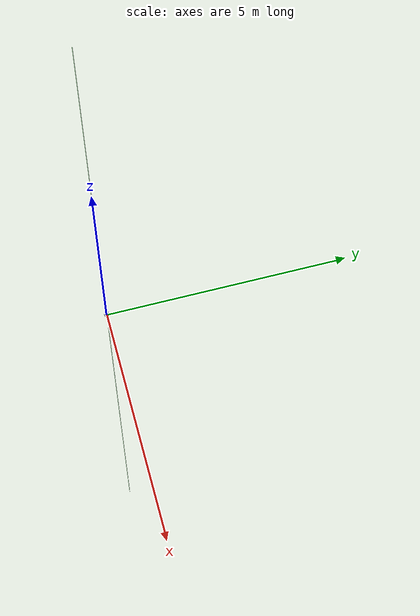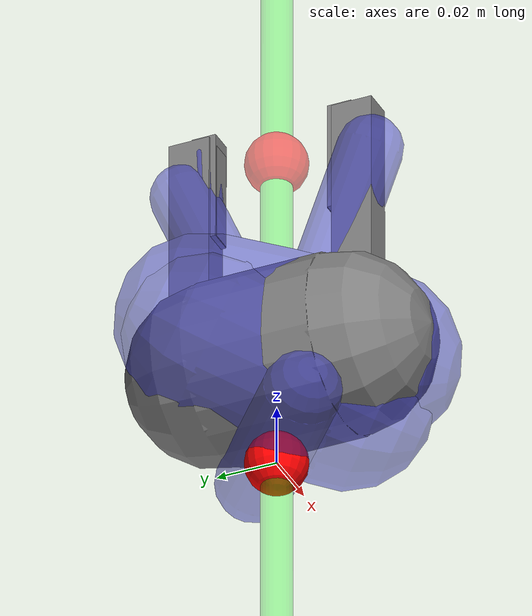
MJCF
<mujoco model="base">
  <asset>
    <mesh name="standard_narrow" file="meshes/rethink_gripper/standard_narrow.stl"/>
    <mesh name="half_round_tip" file="meshes/rethink_gripper/half_round_tip.stl"/>
    <material name="Material_001.001" specular="0.5" shininess="0.25" rgba="0.640000 0.000000 0.000000 1.000000"/>
    <material name="Material_002" specular="0.5" shininess="0.25" rgba="0.640000 0.640000 0.640000 1.000000"/>
    <mesh name="electric_gripper_base_0" file="obj_meshes/rethink_gripper/electric_gripper_base/electric_gripper_base_0.obj"/>
    <mesh name="electric_gripper_base_1" file="obj_meshes/rethink_gripper/electric_gripper_base/electric_gripper_base_1.obj"/>
    <material name="finger_mat" specular="0.5" shininess="0.25" rgba="0.000000 0.000000 0.000000 1.000000"/>
    <material name="Material_001" specular="0.5" shininess="0.25" rgba="0.001651 0.001651 0.001651 1.000000"/>
    <mesh name="connector_plate" file="obj_meshes/rethink_gripper/connector_plate/connector_plate.obj"/>
  </asset>
  <actuator>
    <position ctrllimited="true" ctrlrange="-0.0115 0.020833" joint="r_finger_joint" kp="1000" name="gripper_r_finger_joint" forcelimited="true" forcerange="-20 20"/>
    <position ctrllimited="true" ctrlrange="-0.020833 0.0115" joint="l_finger_joint" kp="1000" name="gripper_l_finger_joint" forcelimited="true" forcerange="-20 20"/>
  </actuator>
  <default>
    <default class="visual">
      <geom contype="0" conaffinity="0" group="1" type="mesh"/>
    </default>
  </default>
  <worldbody>
    <body name="gripper_base" pos="0 0 0">
      <site name="ft_frame" pos="0 0 0" size="0.01 0.01 0.01" rgba="1 0 0 1" type="sphere" group="1"/>
      <inertial pos="0 0 0" quat="-0.5 0.5 0.5 0.5" mass="0.3" diaginertia="3e-08 2e-08 2e-08"/>
      <geom material="Material_001" pos="0.000375 -0.000399 0.009705" quat="0.492537 0.048429 0.715869 0.492537" class="visual" type="capsule" size="0.012370 0.025608" rgba="0.2 0.2 0.8 0.5"/>
      <geom material="Material_002" pos="0.003949 0.001298 0.036681" quat="0.583362 -0.561638 0.062768 0.583362" class="visual" type="capsule" size="0.027455 0.022754" rgba="0.2 0.2 0.8 0.5"/>
      <geom material="Material_001.001" pos="0.006136 -0.000938 0.048234" quat="0.557867 -0.576691 0.212122 0.557867" class="visual" type="capsule" size="0.027861 0.026319" rgba="0.2 0.2 0.8 0.5"/>
      <geom size="0.029 0.021" quat="0 0 0.707107 0.707107" type="capsule" group="0" name="gripper_base_col" pos="0.004 0.0 0.04"/>
      <body name="eef" pos="0 0 0.109" quat="0.707105 0 0 -0.707105">
        <site name="grip_site" pos="0 0 0" size="0.01 0.01 0.01" rgba="1 0 0 0.5" type="sphere" group="1"/>
        <site name="ee_x" pos="0.1 0 0" size="0.005 .1" quat="0.707105  0 0.707108 0 " rgba="1 0 0 0" type="cylinder" group="1"/>
        <site name="ee_y" pos="0 0.1 0" size="0.005 .1" quat="0.707105 0.707108 0 0" rgba="0 1 0 0" type="cylinder" group="1"/>
        <site name="ee_z" pos="0 0 0.1" size="0.005 .1" quat="1 0 0 0" rgba="0 0 1 0" type="cylinder" group="1"/>
        <site name="grip_site_cylinder" pos="0 0 0" size="0.005 10" rgba="0 1 0 0.3" type="cylinder" group="1"/>
      </body>
      <body name="l_finger" pos="0 0.01 0.0444">
        <inertial pos="0 0 0" quat="0 0 0 -1" mass="0.02" diaginertia="0.01 0.01 0.01"/>
        <joint name="l_finger_joint" pos="0 0 0" axis="0 1 0" type="slide" limited="true" range="-0.0115 0.020833" damping="100" armature="1.0" frictionloss="1.0"/>
        <geom name="l_finger" quat="0.000000 0.200590 0.957616 -0.206724" type="capsule" contype="0" conaffinity="0" group="1" material="finger_mat" pos="-0.002129 0.008645 0.031337" size="0.010339 0.033020" rgba="0.2 0.2 0.8 0.5"/>
        <geom size="0.005 0.00675 0.0375" pos="0 0.01725 0.04" quat="0 0 0 -1" type="box" group="0" conaffinity="1" contype="0" name="l_finger_g0" friction="0 0 0"/>
        <geom size="0.005 0.025 0.0085" pos="-0.005 -0.003 0.0083" quat="0 0 0 -1" type="box" group="0" conaffinity="1" contype="0" name="l_finger_g1" friction="0 0 0"/>
        <body name="l_finger_tip" pos="0 0.01725 0.075">
          <inertial pos="0 0 0" quat="0 0 0 1" mass="0.01" diaginertia="0.01 0.01 0.01"/>
          <geom name="l_fingertip_g0_vis" quat="0.000000 -0.000247 0.020471 0.999790" type="capsule" contype="0" conaffinity="0" group="1" material="finger_mat" pos="-0.000244 -0.003940 -0.014927" size="0.004874 0.013159" rgba="0.2 0.2 0.8 0.5"/>
          <geom size="0.004 0.004 0.0185" pos="0 -0.0045 -0.015" quat="0 0 0 -1" type="box" group="0" conaffinity="1" contype="0" name="l_fingertip_g0" friction="0 0 0"/>
          <geom size="0.0035 0.004 0.0165" pos="0 -0.0047 -0.017" type="box" conaffinity="1" contype="0" name="l_fingerpad_g0" friction="0 0 0"/>
        </body>
      </body>
      <body name="r_finger" pos="0 -0.01 0.0444">
        <inertial pos="0 0 0" mass="0.02" diaginertia="0.01 0.01 0.01"/>
        <joint name="r_finger_joint" pos="0 0 0" axis="0 1 0" type="slide" limited="true" range="-0.020833 0.0115" damping="100" armature="1.0" frictionloss="1.0"/>
        <geom name="r_finger" type="capsule" contype="0" conaffinity="0" group="1" material="finger_mat" pos="0.002129 -0.008645 0.031337" quat="0.206724 -0.957616 0.200590 0.000000" size="0.010339 0.033020" rgba="0.2 0.2 0.8 0.5"/>
        <geom size="0.005 0.00675 0.0375" pos="0 -0.01725 0.04" type="box" group="0" conaffinity="1" contype="0" name="r_finger_g0" friction="0 0 0"/>
        <geom size="0.005 0.025 0.0085" pos="0.005 0.003 0.0083" type="box" group="0" conaffinity="1" contype="0" name="r_finger_g1" friction="0 0 0"/>
        <body name="r_finger_tip" pos="0 -0.01725 0.075">
          <inertial pos="0 0 0" mass="0.01" diaginertia="0.01 0.01 0.01"/>
          <geom name="r_fingertip_g0_vis" type="capsule" contype="0" conaffinity="0" group="1" material="finger_mat" pos="0.000244 0.003940 -0.014927" quat="0.999790 0.020471 0.000247 0.000000" size="0.004874 0.013159" rgba="0.2 0.2 0.8 0.5"/>
          <geom size="0.004 0.004 0.0185" pos="0 0.0045 -0.015" type="box" group="0" conaffinity="1" contype="0" name="r_fingertip_g0" friction="0 0 0"/>
          <geom size="0.0035 0.004 0.0165" pos="0 0.0047 -0.017" type="box" conaffinity="1" contype="0" name="r_fingerpad_g0" friction="0 0 0"/>
        </body>
      </body>
    </body>
  </worldbody>
  <sensor>
    <force name="force_ee" site="ft_frame"/>
    <torque name="torque_ee" site="ft_frame"/>
  </sensor>
</mujoco>
